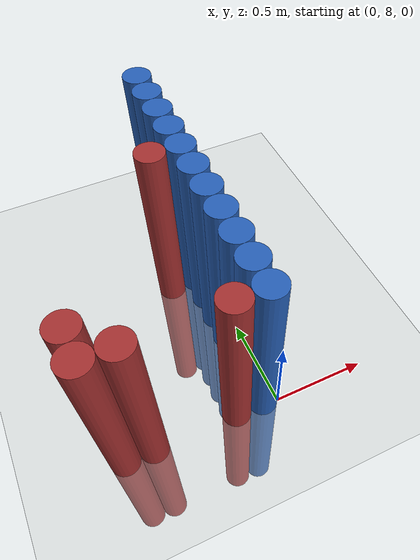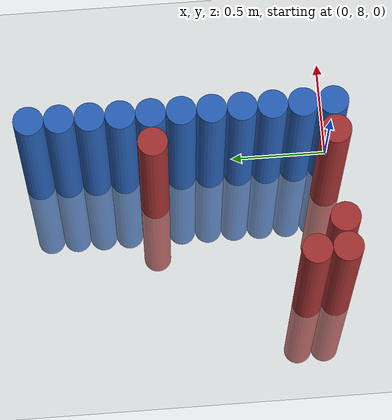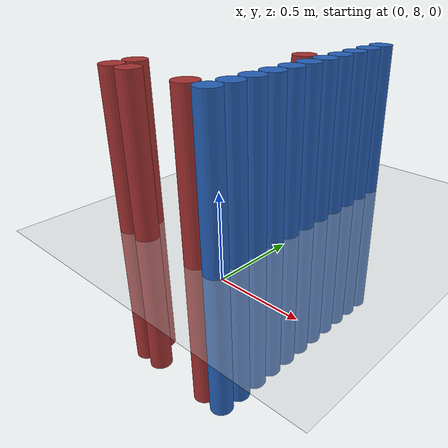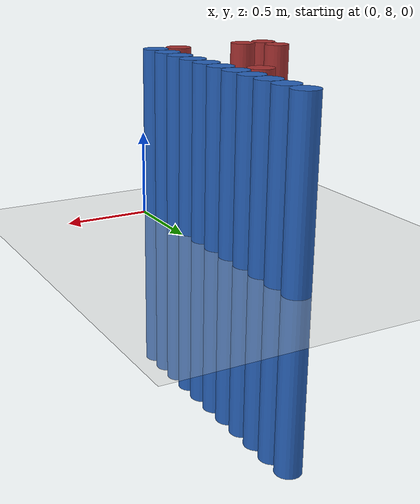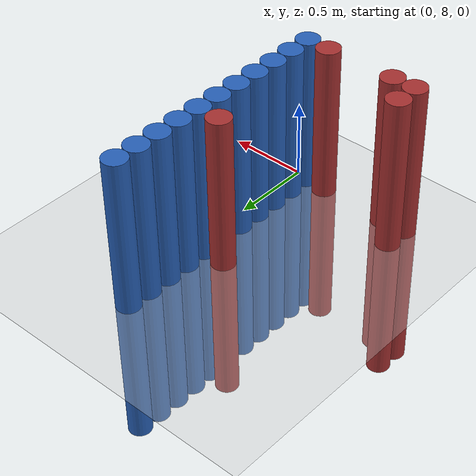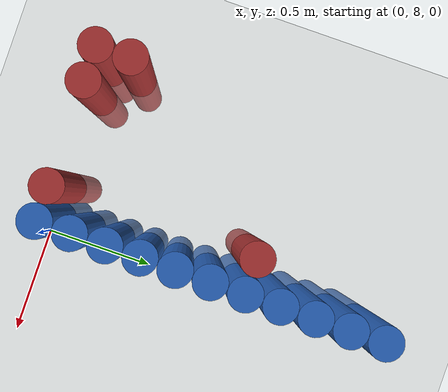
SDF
<sdf version="1.6">
 <world name="default">
  <model name="ground_plane">
   <static>1</static>
   <link name="link">
    <collision name="collision">
     <geometry><plane><normal>0 0 1</normal><size>100 100</size></plane></geometry>
     <surface><friction><ode><mu>100</mu><mu2>50</mu2></ode></friction></surface>
    </collision>
    <visual name="visual">
     <cast_shadows>0</cast_shadows>
     <geometry><plane><normal>0 0 1</normal><size>100 100</size></plane></geometry>
     <material>
      <script><uri>file://media/materials/scripts/gazebo.material</uri><name>Gazebo/Grey</name></script>
     </material>
    </visual>
   </link>
  </model>
  <model name="unit_cylinder_182">
   <static>1</static>
   <pose>-0.825000 8.025000 0.000000 0.000000 0.000000 0.000000</pose>
   <link name="link">
    <inertial>
     <mass>1</mass>
     <inertia><ixx>0.145833</ixx><ixy>0</ixy><ixz>0</ixz><iyy>0.145833</iyy><iyz>0</iyz><izz>0.125</izz></inertia>
    </inertial>
    <collision name="collision">
     <geometry><cylinder><radius>0.075000</radius><length>2</length></cylinder></geometry>
    </collision>
    <visual name="visual">
     <geometry><cylinder><radius>0.075000</radius><length>2</length></cylinder></geometry>
     <material>
      <ambient>0.648000 0.192000 0.192000 1</ambient>
      <diffuse>0.648000 0.192000 0.192000 1</diffuse>
     </material>
     <material>
      <script><name>Gazebo/Grey</name><uri>file://media/materials/scripts/gazebo.material</uri></script>
     </material>
    </visual>
   </link>
  </model>
  <model name="unit_cylinder_183">
   <static>1</static>
   <pose>-0.825000 8.175000 0.000000 0.000000 0.000000 0.000000</pose>
   <link name="link">
    <inertial>
     <mass>1</mass>
     <inertia><ixx>0.145833</ixx><ixy>0</ixy><ixz>0</ixz><iyy>0.145833</iyy><iyz>0</iyz><izz>0.125</izz></inertia>
    </inertial>
    <collision name="collision">
     <geometry><cylinder><radius>0.075000</radius><length>2</length></cylinder></geometry>
    </collision>
    <visual name="visual">
     <geometry><cylinder><radius>0.075000</radius><length>2</length></cylinder></geometry>
     <material>
      <ambient>0.648000 0.192000 0.192000 1</ambient>
      <diffuse>0.648000 0.192000 0.192000 1</diffuse>
     </material>
     <material>
      <script><name>Gazebo/Grey</name><uri>file://media/materials/scripts/gazebo.material</uri></script>
     </material>
    </visual>
   </link>
  </model>
  <model name="unit_cylinder_186">
   <static>1</static>
   <pose>-0.675000 8.025000 0.000000 0.000000 0.000000 0.000000</pose>
   <link name="link">
    <inertial>
     <mass>1</mass>
     <inertia><ixx>0.145833</ixx><ixy>0</ixy><ixz>0</ixz><iyy>0.145833</iyy><iyz>0</iyz><izz>0.125</izz></inertia>
    </inertial>
    <collision name="collision">
     <geometry><cylinder><radius>0.075000</radius><length>2</length></cylinder></geometry>
    </collision>
    <visual name="visual">
     <geometry><cylinder><radius>0.075000</radius><length>2</length></cylinder></geometry>
     <material>
      <ambient>0.648000 0.192000 0.192000 1</ambient>
      <diffuse>0.648000 0.192000 0.192000 1</diffuse>
     </material>
     <material>
      <script><name>Gazebo/Grey</name><uri>file://media/materials/scripts/gazebo.material</uri></script>
     </material>
    </visual>
   </link>
  </model>
  <model name="unit_cylinder_210">
   <static>1</static>
   <pose>-0.225000 8.025000 0.000000 0.000000 0.000000 0.000000</pose>
   <link name="link">
    <inertial>
     <mass>1</mass>
     <inertia><ixx>0.145833</ixx><ixy>0</ixy><ixz>0</ixz><iyy>0.145833</iyy><iyz>0</iyz><izz>0.125</izz></inertia>
    </inertial>
    <collision name="collision">
     <geometry><cylinder><radius>0.075000</radius><length>2</length></cylinder></geometry>
    </collision>
    <visual name="visual">
     <geometry><cylinder><radius>0.075000</radius><length>2</length></cylinder></geometry>
     <material>
      <ambient>0.648000 0.192000 0.192000 1</ambient>
      <diffuse>0.648000 0.192000 0.192000 1</diffuse>
     </material>
     <material>
      <script><name>Gazebo/Grey</name><uri>file://media/materials/scripts/gazebo.material</uri></script>
     </material>
    </visual>
   </link>
  </model>
  <model name="unit_cylinder_211">
   <static>1</static>
   <pose>-0.225000 8.925000 0.000000 0.000000 0.000000 0.000000</pose>
   <link name="link">
    <inertial>
     <mass>1</mass>
     <inertia><ixx>0.145833</ixx><ixy>0</ixy><ixz>0</ixz><iyy>0.145833</iyy><iyz>0</iyz><izz>0.125</izz></inertia>
    </inertial>
    <collision name="collision">
     <geometry><cylinder><radius>0.075000</radius><length>2</length></cylinder></geometry>
    </collision>
    <visual name="visual">
     <geometry><cylinder><radius>0.075000</radius><length>2</length></cylinder></geometry>
     <material>
      <ambient>0.648000 0.192000 0.192000 1</ambient>
      <diffuse>0.648000 0.192000 0.192000 1</diffuse>
     </material>
     <material>
      <script><name>Gazebo/Grey</name><uri>file://media/materials/scripts/gazebo.material</uri></script>
     </material>
    </visual>
   </link>
  </model>
  <model name="unit_cylinder_231">
   <static>1</static>
   <pose>-0.075000 8.025000 0.000000 0.000000 0.000000 0.000000</pose>
   <link name="link">
    <inertial>
     <mass>1</mass>
     <inertia><ixx>0.145833</ixx><ixy>0</ixy><ixz>0</ixz><iyy>0.145833</iyy><iyz>0</iyz><izz>0.125</izz></inertia>
    </inertial>
    <collision name="collision">
     <geometry><cylinder><radius>0.075000</radius><length>2</length></cylinder></geometry>
    </collision>
    <visual name="visual">
     <geometry><cylinder><radius>0.075000</radius><length>2</length></cylinder></geometry>
     <material>
      <ambient>0.152000 0.379000 0.720000 1</ambient>
      <diffuse>0.152000 0.379000 0.720000 1</diffuse>
     </material>
     <material>
      <script><name>Gazebo/Grey</name><uri>file://media/materials/scripts/gazebo.material</uri></script>
     </material>
    </visual>
   </link>
  </model>
  <model name="unit_cylinder_232">
   <static>1</static>
   <pose>-0.075000 8.175000 0.000000 0.000000 0.000000 0.000000</pose>
   <link name="link">
    <inertial>
     <mass>1</mass>
     <inertia><ixx>0.145833</ixx><ixy>0</ixy><ixz>0</ixz><iyy>0.145833</iyy><iyz>0</iyz><izz>0.125</izz></inertia>
    </inertial>
    <collision name="collision">
     <geometry><cylinder><radius>0.075000</radius><length>2</length></cylinder></geometry>
    </collision>
    <visual name="visual">
     <geometry><cylinder><radius>0.075000</radius><length>2</length></cylinder></geometry>
     <material>
      <ambient>0.152000 0.379000 0.720000 1</ambient>
      <diffuse>0.152000 0.379000 0.720000 1</diffuse>
     </material>
     <material>
      <script><name>Gazebo/Grey</name><uri>file://media/materials/scripts/gazebo.material</uri></script>
     </material>
    </visual>
   </link>
  </model>
  <model name="unit_cylinder_233">
   <static>1</static>
   <pose>-0.075000 8.325000 0.000000 0.000000 0.000000 0.000000</pose>
   <link name="link">
    <inertial>
     <mass>1</mass>
     <inertia><ixx>0.145833</ixx><ixy>0</ixy><ixz>0</ixz><iyy>0.145833</iyy><iyz>0</iyz><izz>0.125</izz></inertia>
    </inertial>
    <collision name="collision">
     <geometry><cylinder><radius>0.075000</radius><length>2</length></cylinder></geometry>
    </collision>
    <visual name="visual">
     <geometry><cylinder><radius>0.075000</radius><length>2</length></cylinder></geometry>
     <material>
      <ambient>0.152000 0.379000 0.720000 1</ambient>
      <diffuse>0.152000 0.379000 0.720000 1</diffuse>
     </material>
     <material>
      <script><name>Gazebo/Grey</name><uri>file://media/materials/scripts/gazebo.material</uri></script>
     </material>
    </visual>
   </link>
  </model>
  <model name="unit_cylinder_234">
   <static>1</static>
   <pose>-0.075000 8.475000 0.000000 0.000000 0.000000 0.000000</pose>
   <link name="link">
    <inertial>
     <mass>1</mass>
     <inertia><ixx>0.145833</ixx><ixy>0</ixy><ixz>0</ixz><iyy>0.145833</iyy><iyz>0</iyz><izz>0.125</izz></inertia>
    </inertial>
    <collision name="collision">
     <geometry><cylinder><radius>0.075000</radius><length>2</length></cylinder></geometry>
    </collision>
    <visual name="visual">
     <geometry><cylinder><radius>0.075000</radius><length>2</length></cylinder></geometry>
     <material>
      <ambient>0.152000 0.379000 0.720000 1</ambient>
      <diffuse>0.152000 0.379000 0.720000 1</diffuse>
     </material>
     <material>
      <script><name>Gazebo/Grey</name><uri>file://media/materials/scripts/gazebo.material</uri></script>
     </material>
    </visual>
   </link>
  </model>
  <model name="unit_cylinder_235">
   <static>1</static>
   <pose>-0.075000 8.625000 0.000000 0.000000 0.000000 0.000000</pose>
   <link name="link">
    <inertial>
     <mass>1</mass>
     <inertia><ixx>0.145833</ixx><ixy>0</ixy><ixz>0</ixz><iyy>0.145833</iyy><iyz>0</iyz><izz>0.125</izz></inertia>
    </inertial>
    <collision name="collision">
     <geometry><cylinder><radius>0.075000</radius><length>2</length></cylinder></geometry>
    </collision>
    <visual name="visual">
     <geometry><cylinder><radius>0.075000</radius><length>2</length></cylinder></geometry>
     <material>
      <ambient>0.152000 0.379000 0.720000 1</ambient>
      <diffuse>0.152000 0.379000 0.720000 1</diffuse>
     </material>
     <material>
      <script><name>Gazebo/Grey</name><uri>file://media/materials/scripts/gazebo.material</uri></script>
     </material>
    </visual>
   </link>
  </model>
  <model name="unit_cylinder_236">
   <static>1</static>
   <pose>-0.075000 8.775000 0.000000 0.000000 0.000000 0.000000</pose>
   <link name="link">
    <inertial>
     <mass>1</mass>
     <inertia><ixx>0.145833</ixx><ixy>0</ixy><ixz>0</ixz><iyy>0.145833</iyy><iyz>0</iyz><izz>0.125</izz></inertia>
    </inertial>
    <collision name="collision">
     <geometry><cylinder><radius>0.075000</radius><length>2</length></cylinder></geometry>
    </collision>
    <visual name="visual">
     <geometry><cylinder><radius>0.075000</radius><length>2</length></cylinder></geometry>
     <material>
      <ambient>0.152000 0.379000 0.720000 1</ambient>
      <diffuse>0.152000 0.379000 0.720000 1</diffuse>
     </material>
     <material>
      <script><name>Gazebo/Grey</name><uri>file://media/materials/scripts/gazebo.material</uri></script>
     </material>
    </visual>
   </link>
  </model>
  <model name="unit_cylinder_237">
   <static>1</static>
   <pose>-0.075000 8.925000 0.000000 0.000000 0.000000 0.000000</pose>
   <link name="link">
    <inertial>
     <mass>1</mass>
     <inertia><ixx>0.145833</ixx><ixy>0</ixy><ixz>0</ixz><iyy>0.145833</iyy><iyz>0</iyz><izz>0.125</izz></inertia>
    </inertial>
    <collision name="collision">
     <geometry><cylinder><radius>0.075000</radius><length>2</length></cylinder></geometry>
    </collision>
    <visual name="visual">
     <geometry><cylinder><radius>0.075000</radius><length>2</length></cylinder></geometry>
     <material>
      <ambient>0.152000 0.379000 0.720000 1</ambient>
      <diffuse>0.152000 0.379000 0.720000 1</diffuse>
     </material>
     <material>
      <script><name>Gazebo/Grey</name><uri>file://media/materials/scripts/gazebo.material</uri></script>
     </material>
    </visual>
   </link>
  </model>
  <model name="unit_cylinder_238">
   <static>1</static>
   <pose>-0.075000 9.075000 0.000000 0.000000 0.000000 0.000000</pose>
   <link name="link">
    <inertial>
     <mass>1</mass>
     <inertia><ixx>0.145833</ixx><ixy>0</ixy><ixz>0</ixz><iyy>0.145833</iyy><iyz>0</iyz><izz>0.125</izz></inertia>
    </inertial>
    <collision name="collision">
     <geometry><cylinder><radius>0.075000</radius><length>2</length></cylinder></geometry>
    </collision>
    <visual name="visual">
     <geometry><cylinder><radius>0.075000</radius><length>2</length></cylinder></geometry>
     <material>
      <ambient>0.152000 0.379000 0.720000 1</ambient>
      <diffuse>0.152000 0.379000 0.720000 1</diffuse>
     </material>
     <material>
      <script><name>Gazebo/Grey</name><uri>file://media/materials/scripts/gazebo.material</uri></script>
     </material>
    </visual>
   </link>
  </model>
  <model name="unit_cylinder_239">
   <static>1</static>
   <pose>-0.075000 9.225000 0.000000 0.000000 0.000000 0.000000</pose>
   <link name="link">
    <inertial>
     <mass>1</mass>
     <inertia><ixx>0.145833</ixx><ixy>0</ixy><ixz>0</ixz><iyy>0.145833</iyy><iyz>0</iyz><izz>0.125</izz></inertia>
    </inertial>
    <collision name="collision">
     <geometry><cylinder><radius>0.075000</radius><length>2</length></cylinder></geometry>
    </collision>
    <visual name="visual">
     <geometry><cylinder><radius>0.075000</radius><length>2</length></cylinder></geometry>
     <material>
      <ambient>0.152000 0.379000 0.720000 1</ambient>
      <diffuse>0.152000 0.379000 0.720000 1</diffuse>
     </material>
     <material>
      <script><name>Gazebo/Grey</name><uri>file://media/materials/scripts/gazebo.material</uri></script>
     </material>
    </visual>
   </link>
  </model>
  <model name="unit_cylinder_240">
   <static>1</static>
   <pose>-0.075000 9.375000 0.000000 0.000000 0.000000 0.000000</pose>
   <link name="link">
    <inertial>
     <mass>1</mass>
     <inertia><ixx>0.145833</ixx><ixy>0</ixy><ixz>0</ixz><iyy>0.145833</iyy><iyz>0</iyz><izz>0.125</izz></inertia>
    </inertial>
    <collision name="collision">
     <geometry><cylinder><radius>0.075000</radius><length>2</length></cylinder></geometry>
    </collision>
    <visual name="visual">
     <geometry><cylinder><radius>0.075000</radius><length>2</length></cylinder></geometry>
     <material>
      <ambient>0.152000 0.379000 0.720000 1</ambient>
      <diffuse>0.152000 0.379000 0.720000 1</diffuse>
     </material>
     <material>
      <script><name>Gazebo/Grey</name><uri>file://media/materials/scripts/gazebo.material</uri></script>
     </material>
    </visual>
   </link>
  </model>
  <model name="unit_cylinder_241">
   <static>1</static>
   <pose>-0.075000 9.525000 0.000000 0.000000 0.000000 0.000000</pose>
   <link name="link">
    <inertial>
     <mass>1</mass>
     <inertia><ixx>0.145833</ixx><ixy>0</ixy><ixz>0</ixz><iyy>0.145833</iyy><iyz>0</iyz><izz>0.125</izz></inertia>
    </inertial>
    <collision name="collision">
     <geometry><cylinder><radius>0.075000</radius><length>2</length></cylinder></geometry>
    </collision>
    <visual name="visual">
     <geometry><cylinder><radius>0.075000</radius><length>2</length></cylinder></geometry>
     <material>
      <ambient>0.152000 0.379000 0.720000 1</ambient>
      <diffuse>0.152000 0.379000 0.720000 1</diffuse>
     </material>
     <material>
      <script><name>Gazebo/Grey</name><uri>file://media/materials/scripts/gazebo.material</uri></script>
     </material>
    </visual>
   </link>
  </model>
 </world>
</sdf>
